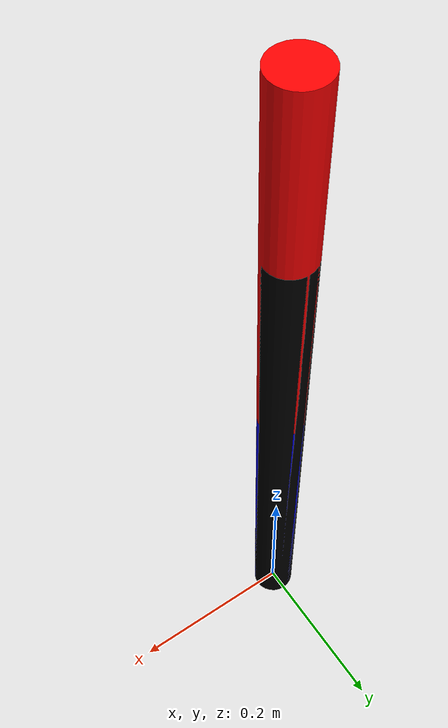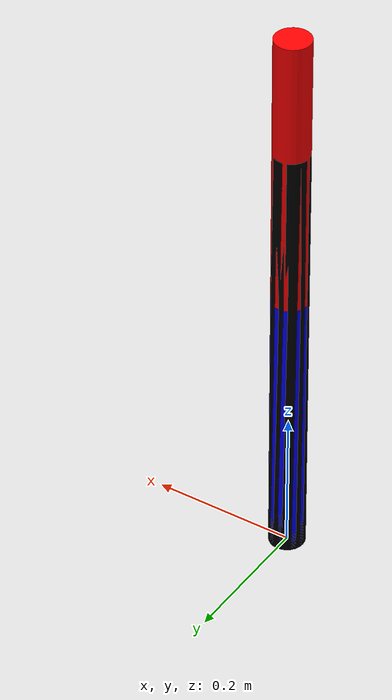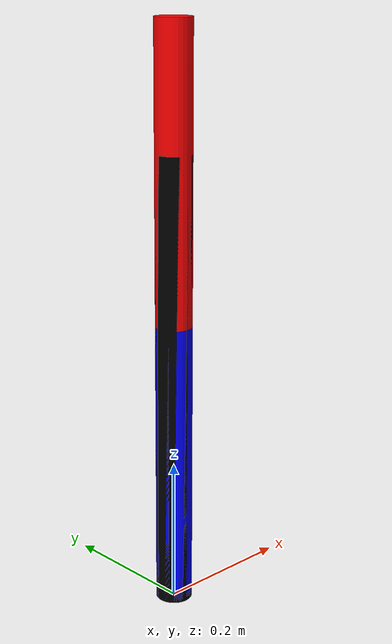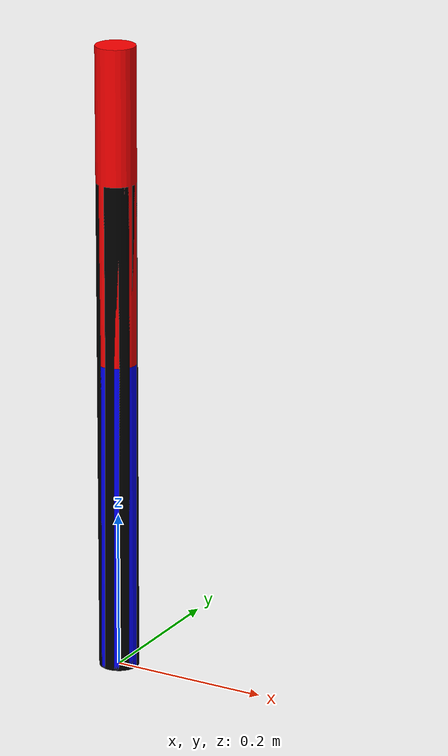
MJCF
<mujoco model="rabbit">
    <compiler angle="radian" />
    <size njmax="500" nconmax="100" />
    <worldbody>
        <body name="torso" pos="0 0 0">
            <inertial pos="0 0 0.24" quat="0.707107 0 0 0.707107" mass="12" diaginertia="0.443333 0.443333 0.443333" />
            <geom size="0.025 0.315" pos="0 0 0.315" type="cylinder" rgba="0 0 0 1" />
            <body name="right_thigh" pos="0 0 0">
                <inertial pos="0 0 0.11" mass="6.8" diaginertia="0.47 0.47 0.47" />
                <joint name="q1_right" pos="0 0 0" axis="0 1 0" />
                <geom size="0.025 0.2" pos="0 0 0.2" type="cylinder" rgba="0 0 1 1" />
                <body name="right_shin" pos="0 0 0.4">
                    <inertial pos="0 0 0.24" mass="3.2" diaginertia="0.2 0.2 0.2" />
                    <joint name="q2_right" pos="0 0 0" axis="0 1 0" />
                    <geom size="0.025 0.2" pos="0 0 0.2" type="cylinder" rgba="1 0 0 1" />
                </body>
            </body>
            <body name="left_thigh" pos="0 0 0">
                <inertial pos="0 0 0.11" mass="6.8" diaginertia="0.47 0.47 0.47" />
                <joint name="q1_left" pos="0 0 0" axis="0 1 0" />
                <geom size="0.025 0.2" pos="0 0 0.2" type="cylinder" rgba="1 0 0 1" />
                <body name="left_shin" pos="0 0 0.4">
                    <inertial pos="0 0 0.24" mass="3.2" diaginertia="0.2 0.2 0.2" />
                    <joint name="q2_left" pos="0 0 0" axis="0 1 0" />
                    <geom size="0.025 0.2" pos="0 0 0.2" type="cylinder" rgba="0 0 1 1" />
                </body>
            </body>
        </body>
    </worldbody>
</mujoco>
